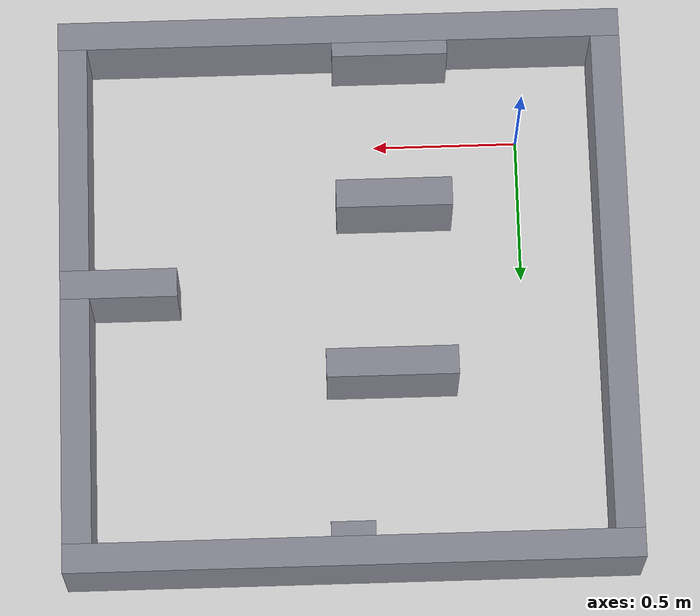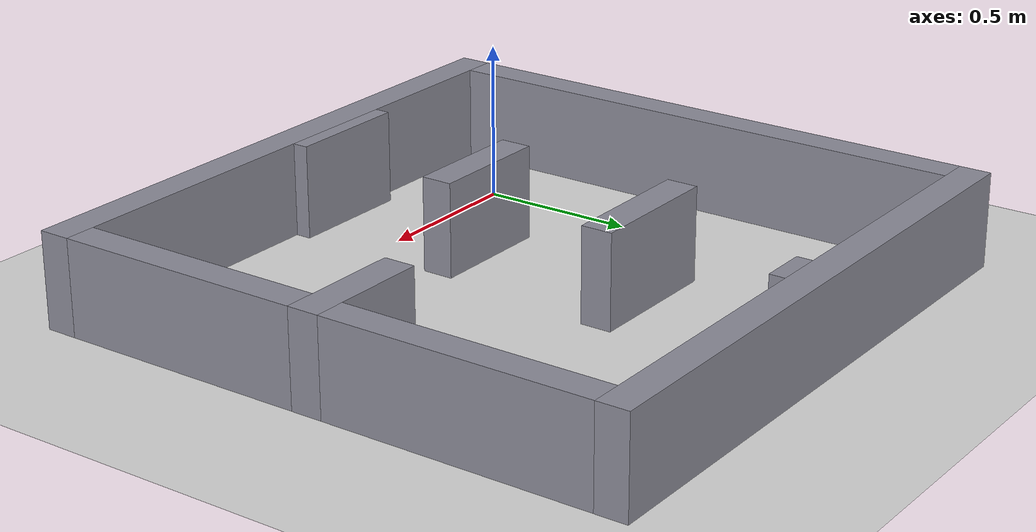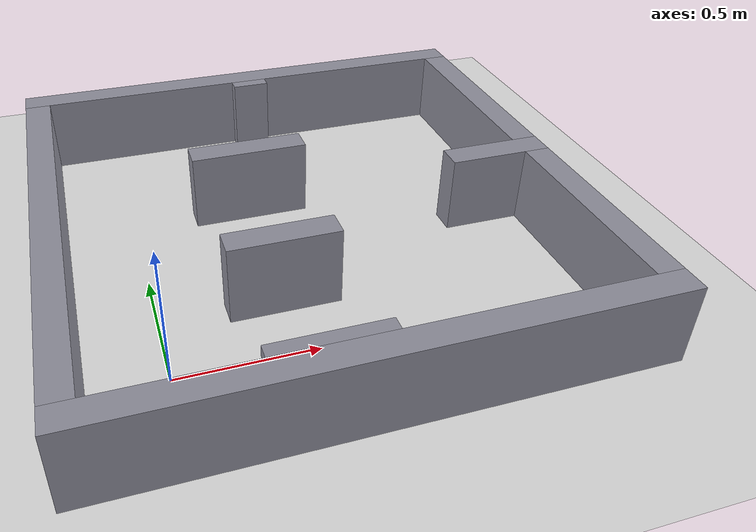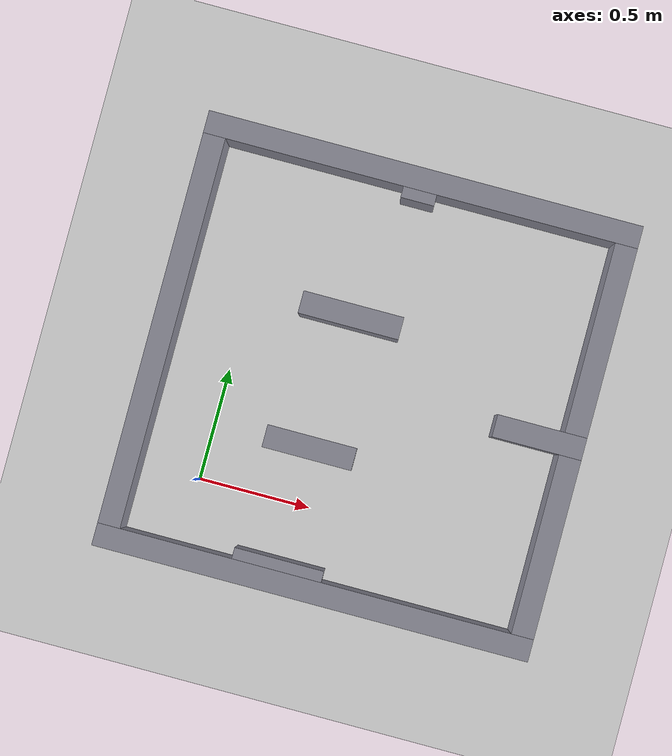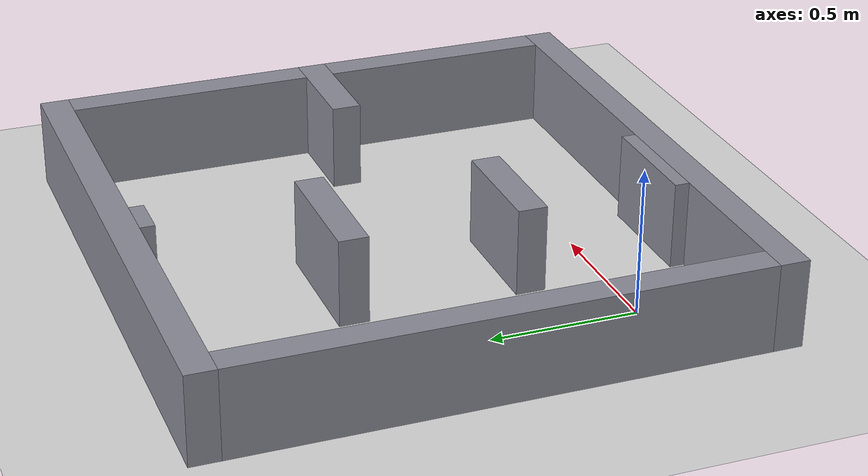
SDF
<?xml version="1.0"?>
<!-- 자동 생성: tools/gen_world.py (원본: smart_nav_bringup/maps/map_gimp.pgm)
     수정하지 말 것 — 맵이 바뀌면 생성기를 다시 돌린다. -->
<sdf version="1.8">
  <world name="smart_arena">
    <physics name="default" type="ignored">
      <max_step_size>0.004</max_step_size>
      <real_time_factor>1.0</real_time_factor>
    </physics>
    <plugin filename="gz-sim-physics-system" name="gz::sim::systems::Physics"/>
    <plugin filename="gz-sim-user-commands-system" name="gz::sim::systems::UserCommands"/>
    <plugin filename="gz-sim-scene-broadcaster-system" name="gz::sim::systems::SceneBroadcaster"/>
    <plugin filename="gz-sim-sensors-system" name="gz::sim::systems::Sensors">
      <render_engine>ogre2</render_engine>
    </plugin>
    <plugin filename="gz-sim-imu-system" name="gz::sim::systems::Imu"/>

    <light type="directional" name="sun">
      <cast_shadows>false</cast_shadows>
      <pose>0 0 10 0 0 0</pose>
      <diffuse>0.9 0.9 0.9 1</diffuse>
      <direction>-0.3 0.2 -0.9</direction>
    </light>

    <model name="ground">
      <static>true</static>
      <link name="link">
        <collision name="col">
          <geometry><plane><normal>0 0 1</normal><size>10 10</size></plane></geometry>
        </collision>
        <visual name="vis">
          <geometry><plane><normal>0 0 1</normal><size>10 10</size></plane></geometry>
          <material><ambient>0.85 0.85 0.85 1</ambient><diffuse>0.85 0.85 0.85 1</diffuse></material>
        </visual>
      </link>
    </model>

    <model name="wall_0">
      <static>true</static>
      <pose>0.614 1.511 0.150 0 0 0</pose>
      <link name="link">
        <collision name="col">
          <geometry><box><size>1.950 0.100 0.3</size></box></geometry>
        </collision>
        <visual name="vis">
          <geometry><box><size>1.950 0.100 0.3</size></box></geometry>
          <material><ambient>0.55 0.55 0.6 1</ambient><diffuse>0.55 0.55 0.6 1</diffuse></material>
        </visual>
      </link>
    </model>
    <model name="wall_1">
      <static>true</static>
      <pose>0.614 1.436 0.150 0 0 0</pose>
      <link name="link">
        <collision name="col">
          <geometry><box><size>0.150 0.050 0.3</size></box></geometry>
        </collision>
        <visual name="vis">
          <geometry><box><size>0.150 0.050 0.3</size></box></geometry>
          <material><ambient>0.55 0.55 0.6 1</ambient><diffuse>0.55 0.55 0.6 1</diffuse></material>
        </visual>
      </link>
    </model>
    <model name="wall_2">
      <static>true</static>
      <pose>0.464 0.861 0.150 0 0 0</pose>
      <link name="link">
        <collision name="col">
          <geometry><box><size>0.450 0.100 0.3</size></box></geometry>
        </collision>
        <visual name="vis">
          <geometry><box><size>0.450 0.100 0.3</size></box></geometry>
          <material><ambient>0.55 0.55 0.6 1</ambient><diffuse>0.55 0.55 0.6 1</diffuse></material>
        </visual>
      </link>
    </model>
    <model name="wall_3">
      <static>true</static>
      <pose>1.539 1.036 0.150 0 0 0</pose>
      <link name="link">
        <collision name="col">
          <geometry><box><size>0.100 0.850 0.3</size></box></geometry>
        </collision>
        <visual name="vis">
          <geometry><box><size>0.100 0.850 0.3</size></box></geometry>
          <material><ambient>0.55 0.55 0.6 1</ambient><diffuse>0.55 0.55 0.6 1</diffuse></material>
        </visual>
      </link>
    </model>
    <model name="wall_4">
      <static>true</static>
      <pose>1.389 0.561 0.150 0 0 0</pose>
      <link name="link">
        <collision name="col">
          <geometry><box><size>0.400 0.100 0.3</size></box></geometry>
        </collision>
        <visual name="vis">
          <geometry><box><size>0.400 0.100 0.3</size></box></geometry>
          <material><ambient>0.55 0.55 0.6 1</ambient><diffuse>0.55 0.55 0.6 1</diffuse></material>
        </visual>
      </link>
    </model>
    <model name="wall_5">
      <static>true</static>
      <pose>0.439 0.261 0.150 0 0 0</pose>
      <link name="link">
        <collision name="col">
          <geometry><box><size>0.400 0.100 0.3</size></box></geometry>
        </collision>
        <visual name="vis">
          <geometry><box><size>0.400 0.100 0.3</size></box></geometry>
          <material><ambient>0.55 0.55 0.6 1</ambient><diffuse>0.55 0.55 0.6 1</diffuse></material>
        </visual>
      </link>
    </model>
    <model name="wall_6">
      <static>true</static>
      <pose>-0.311 0.586 0.150 0 0 0</pose>
      <link name="link">
        <collision name="col">
          <geometry><box><size>0.100 1.750 0.3</size></box></geometry>
        </collision>
        <visual name="vis">
          <geometry><box><size>0.100 1.750 0.3</size></box></geometry>
          <material><ambient>0.55 0.55 0.6 1</ambient><diffuse>0.55 0.55 0.6 1</diffuse></material>
        </visual>
      </link>
    </model>
    <model name="wall_7">
      <static>true</static>
      <pose>1.539 0.111 0.150 0 0 0</pose>
      <link name="link">
        <collision name="col">
          <geometry><box><size>0.100 0.800 0.3</size></box></geometry>
        </collision>
        <visual name="vis">
          <geometry><box><size>0.100 0.800 0.3</size></box></geometry>
          <material><ambient>0.55 0.55 0.6 1</ambient><diffuse>0.55 0.55 0.6 1</diffuse></material>
        </visual>
      </link>
    </model>
    <model name="wall_8">
      <static>true</static>
      <pose>0.439 -0.264 0.150 0 0 0</pose>
      <link name="link">
        <collision name="col">
          <geometry><box><size>0.400 0.050 0.3</size></box></geometry>
        </collision>
        <visual name="vis">
          <geometry><box><size>0.400 0.050 0.3</size></box></geometry>
          <material><ambient>0.55 0.55 0.6 1</ambient><diffuse>0.55 0.55 0.6 1</diffuse></material>
        </visual>
      </link>
    </model>
    <model name="wall_9">
      <static>true</static>
      <pose>0.614 -0.339 0.150 0 0 0</pose>
      <link name="link">
        <collision name="col">
          <geometry><box><size>1.950 0.100 0.3</size></box></geometry>
        </collision>
        <visual name="vis">
          <geometry><box><size>1.950 0.100 0.3</size></box></geometry>
          <material><ambient>0.55 0.55 0.6 1</ambient><diffuse>0.55 0.55 0.6 1</diffuse></material>
        </visual>
      </link>
    </model>
  </world>
</sdf>
